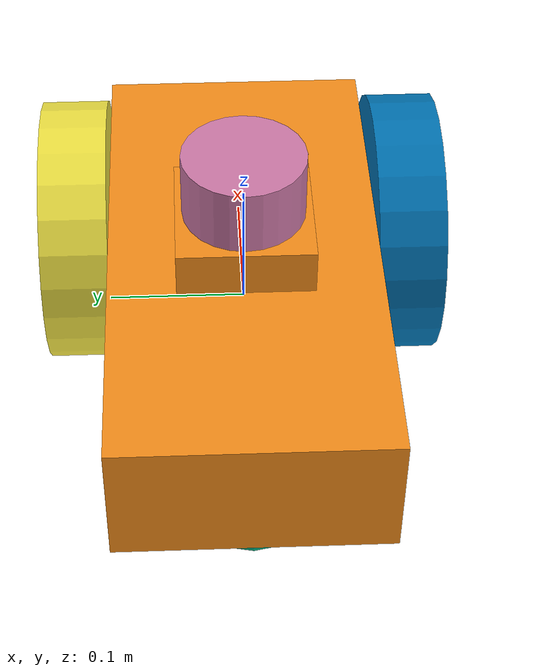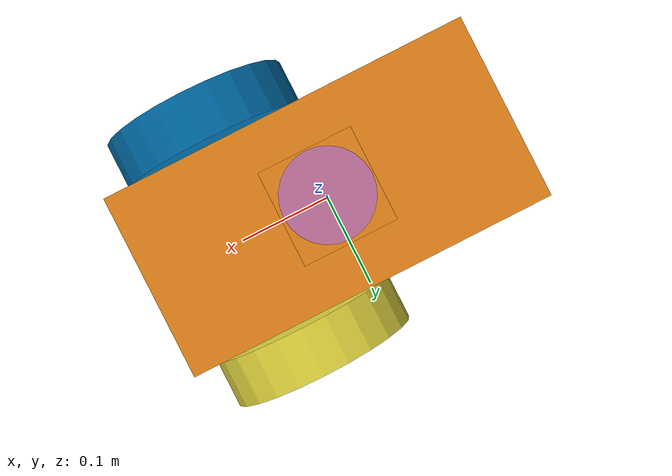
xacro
<?xml version="1.0"?>
<robot name="my robot" xmlns:xacro="http://www.ros.org/wiki/xacro">
  <xacro:include filename="$(find simulation)/models/robot/myrobot.gazebo" />

   <link name ='dummyLink'>
        <pose> 0 0 0 0 0 0 </pose>
   </link>

    <link name = 'chassisLink'>
        <pose> 0 0 0 0 0 0 </pose>
       <inertial>
          <mass value = "3"/>
          <inertia ixx="0.012500000000000002" ixy="0" ixz="0" iyy="0.04250000000000001" iyz="0" izz=" 0.05000000000000001"/>
        </inertial>

        <collision name ='collisionChassis'>
            <origin rpy="0 0 0" xyz ="0 0 0"/>
            <geometry>
                <box size ="0.4 0.2 0.1"/>
            </geometry>
        </collision>
        <visual name='baseLinkVisual'>
            <origin rpy="0 0 0" xyz ="0 0 0"/>
                <geometry>
                    <box size ="0.4 0.2 0.1"/>
                </geometry>
            <material name="orange"/>
        </visual>
    </link>
    <joint name="baseLinktochassis" type="fixed">
        <child link="chassisLink"/>
        <parent link="dummyLink"/>
    </joint>

    <link name="casterLink">
    <inertial>
        <mass value="0.1"/>
        <origin rpy="0 0 0" xyz="0 0 0"/>
        <inertia ixx=" 1.9600000000000003e-06" ixy="0" ixz="0" iyy=" 1.9600000000000003e-06" iyz="0" izz=" 1.9600000000000003e-06"/>
    </inertial>
        <collision name ='collisionCaster'>
            <origin rpy="0 0 0" xyz="0 0 0"/>
            <geometry>
                <sphere radius="0.07"/>
            </geometry>
            <surface>
                <friction>
                    <ode>
                        <mu>0</mu>
                        <mu2>0</mu2>
                        <slip1>1</slip1>
                        <slip2>1</slip2>
                    </ode>
                </friction>
            </surface>
        </collision>
        <visual>
            <origin rpy="0 0 0" xyz="0 0 0"/>
            <geometry>
                <sphere radius="0.07"/>
            </geometry>
        </visual>
    </link>

    <joint name="jointCaster" type="continuous">
        <origin rpy="-1.5707 0 0" xyz="-0.13 0 -0.03"/>
        <child link="casterLink"/>
        <parent link="dummyLink"/>
    </joint>

    <link name="leftWheelLink">
        <collision name="collisionLeftWheel">
            <origin rpy="0 1.5707 1.5707" xyz="0 0 0"/>
            <geometry>
                <cylinder radius="0.1" length="0.05"/>
            </geometry>
            <surface>
                <friction>
                    <ode>
                        <mu>1.0</mu>
                        <mu2>1.0</mu2>
                        <slip1>0.0</slip1>
                        <slip2>0.0</slip2>
                    </ode>
                </friction>
            </surface>
        </collision>
        <visual>
            <origin rpy="0 1.5707 1.5707" xyz="0 0 0"/>
            <geometry>
                <cylinder radius="0.1" length="0.05"/>
            </geometry>
        </visual>
        <inertial>
            <origin xyz="0 0 0" rpy="0 1.5707 1.5707"/>
             <mass value="0.2"/>
             <inertia ixx=" 0.0005416666666666668" ixy="0" ixz="0" iyy=" 0.0005416666666666668" iyz="0" izz="0.0010000000000000002"/>
        </inertial>
    </link>

    <joint name="jointLeftWheel" type="continuous">
        <origin rpy="0 0 0" xyz="0.08 0.125 0"/>
        <child link="leftWheelLink"/>
        <parent link="dummyLink"/>
        <axis rpy="0 0 0" xyz="0 1 0"/>
        <limit effort="50" velocity="50"/>
        <joint_properties damping="0" friction="0"/>
    </joint>

    <link name="rightWheelLink">
        <collision name="collisionRightWheel">
            <origin rpy="0 1.5707 1.5707" xyz="0 0 0"/>
            <geometry>
                <cylinder radius="0.1" length="0.05"/>
            </geometry>
            <surface>
                <friction>
                    <ode>
                        <mu>1.0</mu>
                        <mu2>1.0</mu2>
                        <slip1>0.0</slip1>
                        <slip2>0.0</slip2>
                    </ode>
                </friction>
            </surface>
        </collision>
        <visual>
            <origin rpy="0 1.5707 1.5707" xyz="0 0 0"/>
            <geometry>
                <cylinder radius="0.1" length="0.05"/>
            </geometry>
        </visual>
        <inertial>
            <origin xyz="0 0 0" rpy="0 1.5707 1.5707"/>
             <mass value="0.2"/>
             <inertia ixx=" 0.0005416666666666668" ixy="0" ixz="0" iyy=" 0.0005416666666666668" iyz="0" izz="0.0010000000000000002"/>
        </inertial>
    </link>

    <joint name="jointRightWheel" type="continuous">
        <origin rpy="0 0 0" xyz="0.08 -0.125 0"/>
        <child link="rightWheelLink"/>
        <parent link="dummyLink"/>
        <axis rpy="0 0 0" xyz="0 1 0"/>
        <limit effort="50" velocity="50"/>
        <joint_properties damping="0" friction="0"/>
    </joint>

    <link name ="laserBaseLink">
        <pose> 0 0 0 0 0 0 </pose>
        <inertial>
            <mass value = "1"/>
            <inertia ixx="0.012500000000000002" ixy="0" ixz="0" iyy="0.04250000000000001" iyz="0" izz=" 0.05000000000000001"/>
        </inertial>
        <collision name ='collisionLaserBase'>
            <origin rpy="0 0 0" xyz ="0 0 0"/>
            <geometry>
                <box size ="0.1 0.1 0.05"/>
            </geometry>
        </collision>
        <visual name='baseLinkVisual'>
            <origin rpy="0 0 0" xyz ="0 0 0"/>
            <geometry>
                <box size ="0.1 0.1 0.05"/>
            </geometry>
            <material name="orange"/>
        </visual>
    </link>

    <joint name="baseLinktochassisLaser" type="fixed">
        <origin rpy="0 0 0" xyz="0 0 0.06"/>
        <child link="laserBaseLink"/>
        <parent link="chassisLink"/>
    </joint>

    <link name= "laser_link">
        <collision>
            <origin xyz="0 0 0" rpy="0 0 0"/>
            <geometry>
                <cylinder radius="0.045" length="0.05"/>
            </geometry>
        </collision>
        <visual>
            <origin xyz="0 0 0" rpy="0 0 0"/>
            <geometry>
                <cylinder radius="0.045" length="0.05"/>
            </geometry>
        </visual>
        <inertial>
            <mass value="1" />
            <origin xyz="0 0 0" rpy="0 0 0"/>
            <inertia ixx=" 0.0010416666666666669" ixy="0" ixz="0" iyy="0.0010416666666666669" iyz="0" izz="0.001666666666666667" />
        </inertial>
    </link>

    <joint name="hokuyo_joint" type="fixed">
        <origin xyz="0 0 0.05" rpy="0 0 0"/>
        <child link="laser_link"/>
        <parent link="laserBaseLink"/>
        <axis rpy="0 0 0" xyz="0 0 0"/>
    </joint>

</robot>
